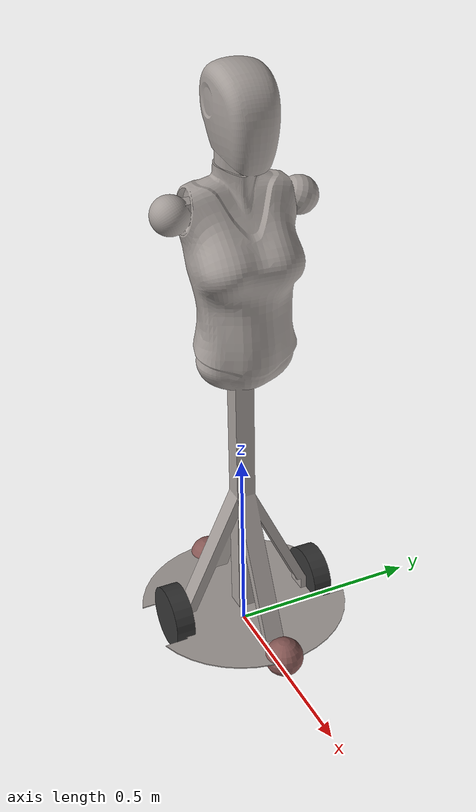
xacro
<?xml version="1.0"?>
<robot xmlns:xacro="http://www.ros.org/wiki/xacro">

  <link name="base_footprint"/>

  <joint
    name="base_joint"
    type="fixed">
    <origin
      xyz="0 0 0.0626"
      rpy="0 0 0" />
    <parent
      link="base_footprint" />
    <child
      link="base_link" />
  </joint>

  <link
    name="base_link">
    <inertial>
      <origin
        xyz="0.0201310485852864 0.000520829416461865 0.865026738420884"
        rpy="0 0 0" />
      <mass
        value="8.2797481488828" />
      <inertia
        ixx="1.40869842198577"
        ixy="0.00172519109922957"
        ixz="0.0295451682055194"
        iyy="1.38963154057563"
        iyz="-0.00609490500279897"
        izz="0.244482664433787" />
    </inertial>
    <visual>
      <origin
        xyz="0 0 0"
        rpy="0 0 0" />
      <geometry>
        <mesh
          filename="package://smrr_description/meshes/base_link.STL" />
      </geometry>
      <material
        name="">
        <color
          rgba="0.643137254901961 0.615686274509804 0.6 1" />
      </material>
    </visual>
    <collision>
      <origin
        xyz="0 0 0"
        rpy="0 0 0" />
      <geometry>
        <mesh
          filename="package://smrr_description/meshes/base_link.STL" />
      </geometry>
    </collision>
  </link>

  <link
    name="right_wheel">
    <inertial>
      <origin
        xyz="3.04623488683875E-06 6.72391256367755E-06 -0.0311105168378413"
        rpy="0 0 0" />
      <mass
        value="0.989823090734283" />
      <inertia
        ixx="0.00167921032012111"
        ixy="6.53172867821882E-09"
        ixz="-1.64665780609969E-07"
        iyy="0.0016792904624912"
        iyz="-3.63464523309006E-07"
        izz="0.00288690083815089" />
    </inertial>
    <visual>
      <origin
        xyz="0 0 0"
        rpy="0 0 0" />
       <geometry>
        <cylinder radius="0.081" length="0.05"/>
      </geometry>
      <material
        name="">
        <color
          rgba="0.2 0.2 0.2 1" />
      </material>
    </visual>
    <collision>
      <origin
        xyz="0 0 0"
        rpy="0 0 0" />
       <geometry>
        <cylinder radius="0.081" length="0.05"/>
      </geometry>
    </collision>
  </link>

  <joint
    name="right_wheel_joint"
    type="continuous">
    <origin
      xyz="0 -0.201 0.0184000000000001"
      rpy="-1.5707963267949 0 0" />
    <parent
      link="base_link" />
    <child
      link="right_wheel" />
    <axis
      xyz="0 0 1" />
    <dynamics damping="0.3" friction="0.5"/>
  </joint>

  <link
    name="left_wheel">
    <inertial>
      <origin
        xyz="-8.38679888204297E-07 7.3339732202804E-06 0.0311105168378413"
        rpy="0 0 0" />
      <mass
        value="0.989823090734282" />
      <inertia
        ixx="0.00167926061595776"
        ixy="-1.12032618333546E-08"
        ixz="-4.53352691396202E-08"
        iyy="0.00167924016665455"
        iyz="3.96441663275016E-07"
        izz="0.0028869008381509" />
    </inertial>
    <visual>
      <origin
        xyz="0 0 0"
        rpy="0 0 0" />
       <geometry>
        <cylinder radius="0.081" length="0.05"/>
      </geometry>
      <material
        name="">
        <color
          rgba="0.2 0.2 0.2 1" />
      </material>
    </visual>
    <collision>
      <origin
        xyz="0 0 0"
        rpy="0 0 0" />
       <geometry>
        <cylinder radius="0.081" length="0.05"/>
      </geometry>
    </collision>
  </link>

      <joint
      name="left_wheel_joint"
      type="continuous">
      <origin
        xyz="0 0.201 0.0183999999999997"
        rpy="-1.5707963267949 0 0" />
      <parent
        link="base_link" />
      <child
        link="left_wheel" />
      <axis
        xyz="0 0 1" />
      <dynamics damping="0.3" friction="0.5"/>
  </joint>

  <link
    name="front_caster">
    <inertial>
      <origin
        xyz="0 0 -0.0025"
        rpy="0 0 0" />
      <mass
        value="0.0335103216382911" />
      <inertia
        ixx="5.36165146212658E-06"
        ixy="0"
        ixz="-9.4039548065783E-38"
        iyy="5.36165146212658E-06"
        iyz="0"
        izz="5.36165146212658E-06" />
    </inertial>
    <visual>
      <origin
        xyz="0 0 0.0284"
        rpy="0 0 0" />
      <geometry>
          <sphere radius="0.05"/>
        </geometry>
      <material
        name="">
        <color
          rgba="0.537254901960784 0.349019607843137 0.337254901960784 1" />
      </material>
    </visual>
    <collision>
      <origin
        xyz="0 0 0.0284"
        rpy="0 0 0" />
      <geometry>
          <sphere radius="0.05"/>
        </geometry>
    </collision>
  </link>

  <joint
    name="front_caster_joint"
    type="fixed">
    <origin
      xyz="0.245 0 -0.04"
      rpy="0 0 0" />
    <parent
      link="base_link" />
    <child
      link="front_caster" />
    <axis
      xyz="1 0 0" />
  </joint>

  <link
    name="back_caster">
    <inertial>
      <origin
        xyz="0 0 -0.0025"
        rpy="0 0 0" />
      <mass
        value="0.0335103216382911" />
      <inertia
        ixx="5.36165146212658E-06"
        ixy="0"
        ixz="-9.4039548065783E-38"
        iyy="5.36165146212658E-06"
        iyz="0"
        izz="5.36165146212658E-06" />
    </inertial>
    <visual>
      <origin
        xyz="0 0 0.0284"
        rpy="0 0 0" />
       <geometry>
          <sphere radius="0.05"/>
        </geometry>
      <material
        name="">
        <color
          rgba="0.537254901960784 0.349019607843137 0.337254901960784 1" />
      </material>
    </visual>
    <collision>
      <origin
        xyz="0 0 0.0284"
        rpy="0 0 0" />
        <geometry>
          <sphere radius="0.05"/>
        </geometry>
    </collision>
  </link>

  <joint
    name="back_caster_joint"
    type="fixed">
    <origin
      xyz="-0.245 0 -0.04"
      rpy="0 0 0" />
    <parent
      link="base_link" />
    <child
      link="back_caster" />
    <axis
      xyz="1 0 0" />
  </joint>

  <link name="link_0_fake"/>

  <joint name="link_0_fake_joint" type="fixed">
    <origin xyz="-0.06173 -0.20542 1.20073" rpy="0.04485 0.06728 -0.05866"/>
    <parent link="base_link"/>
    <child  link="link_0_fake"/>
  </joint>

</robot>
